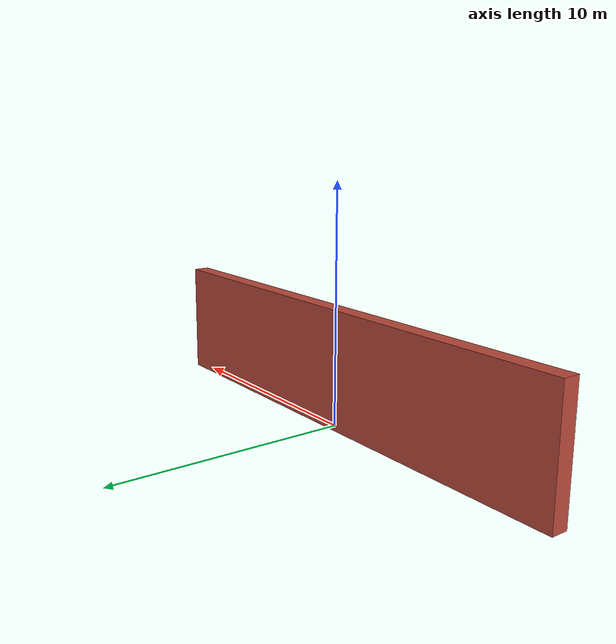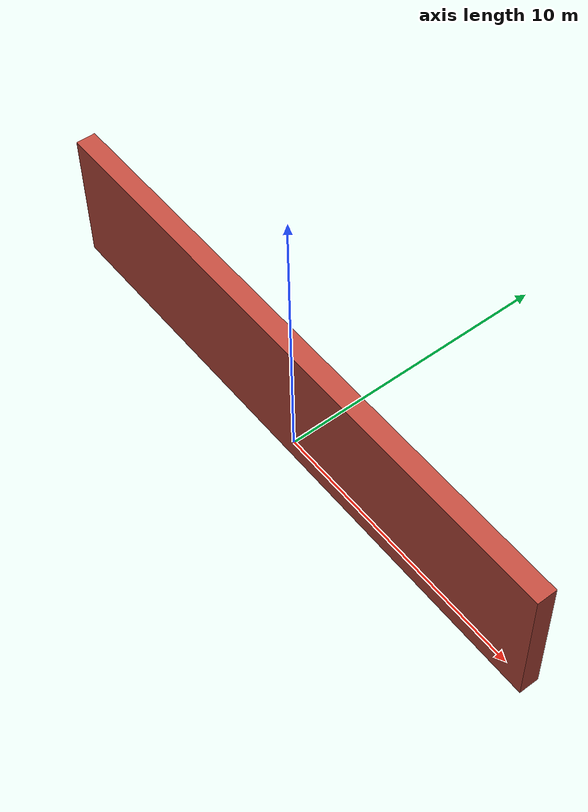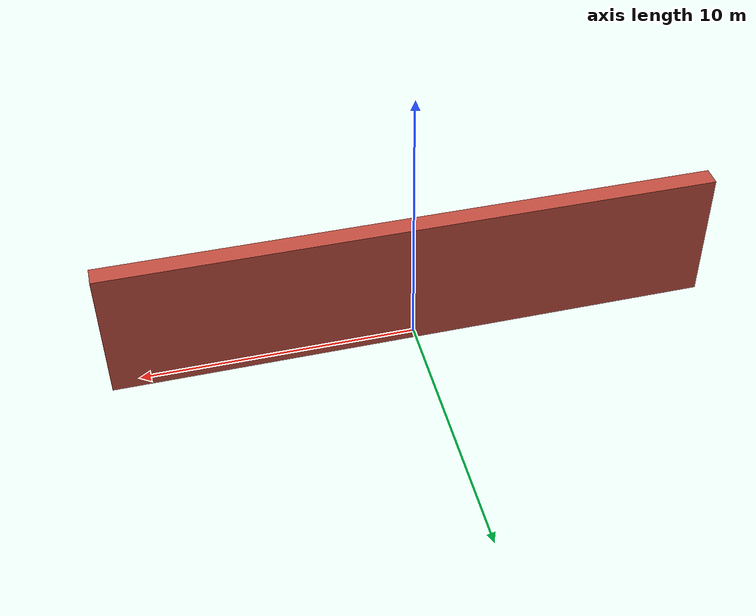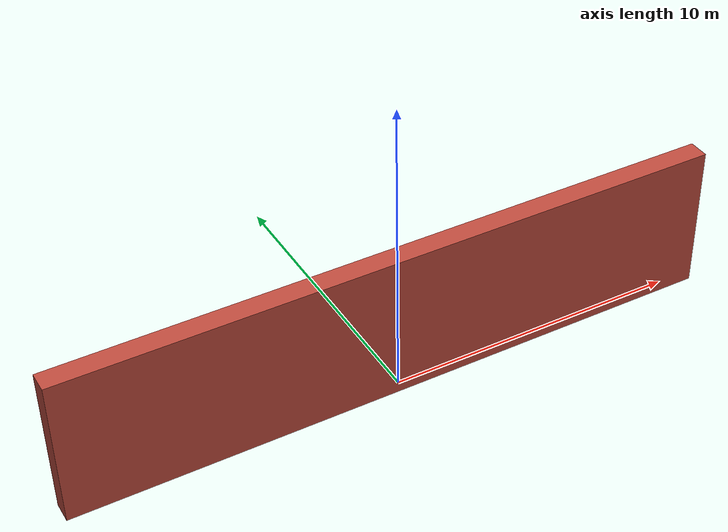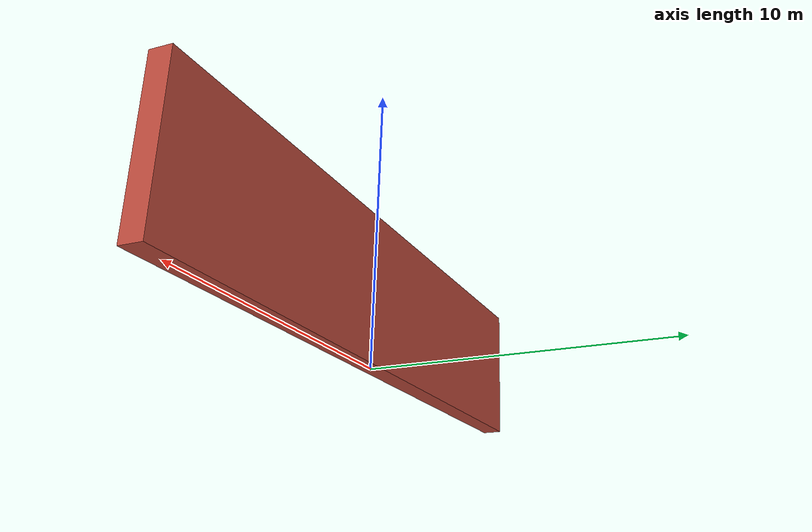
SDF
<?xml version='1.0' ?>
<sdf version="1.6">
    <model name="wall">
        <static>true</static>
        <link name="link">
            <collision name="collision">
                <pose>0 0 0 0 0 0</pose>
                <geometry>
                    <mesh>
                        <uri>wall.dae</uri>
                    </mesh>
                </geometry>
            </collision>
            <visual name="visual">
                <pose>0 0 0 0 0 0</pose>
                <geometry>
                    <mesh>
                        <uri>wall.dae</uri>
                    </mesh>
                </geometry>
            </visual>
        </link>
    </model>
</sdf>
